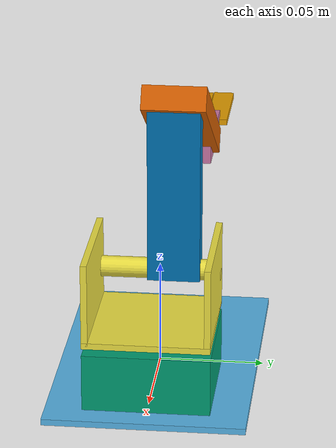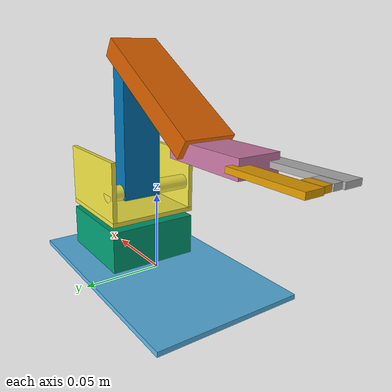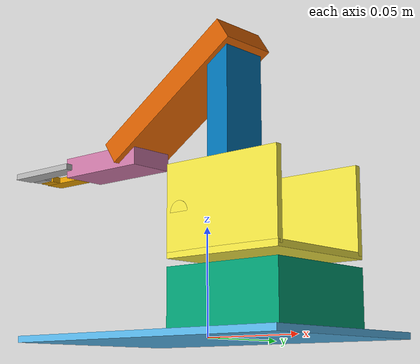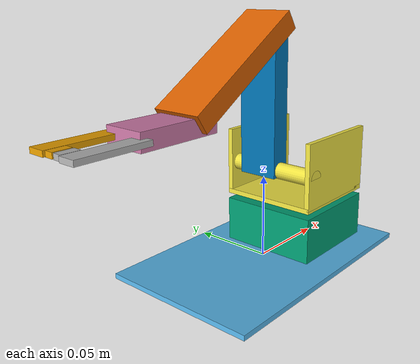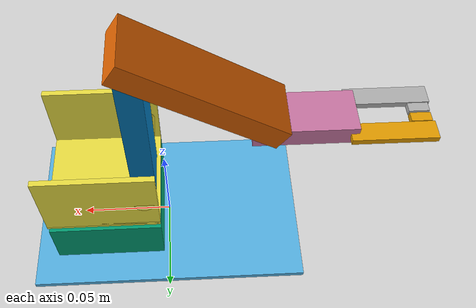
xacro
<?xml version='1.0'?>

<robot name="simple_arm"
  xmlns:xacro="http://www.ros.org/wiki/xacro">

  <!-- Used for fixing robot to Gazebo 'base_link' -->
  <link name="world"/>

  <joint name="fixed" type="fixed">
    <parent link="world"/>
    <child link="arm_footprint"/>
  </joint>

  <!-- footprint tile -->
  <link name='arm_footprint'>
    <inertial>
      <mass value="0.1"/>
      <origin xyz="0.0 0 0" rpy="0 0 0"/>
      <inertia ixx="10" ixy="0.0" ixz="0.0" iyy="10" iyz="0.0" izz="10"/>
    </inertial>

    <collision name='arm_footprint_collision'>
      <origin xyz="0 0 0" rpy="0 0 0"/>
      <geometry>
        <box size="0.15 .095 .003"/>
      </geometry>
    </collision>

    <visual name='arm_footprint_visual'>
      <origin xyz="0 0 0" rpy="0 0 0"/>
      <geometry>
        <box size="0.15 .095 .003"/>
      </geometry>
    </visual>
  </link>
  <!-- begin base block -->
  <joint name="arm_footprint_base_block_joint" type="fixed">
    <origin xyz="0.033 0 0.015"/>
    <child link="base_block" />
    <parent link="arm_footprint" />
  </joint>

  <link name='base_block'>
    <inertial>
      <mass value="0.05" />
      <inertia ixx="10" ixy="0.0" ixz="0.0" iyy="10" iyz="0.0" izz="10"/>
    </inertial>
    <visual name='base_block_visual'>
      <origin xyz="0 0 0" rpy="0 0 0"/>
      <geometry>
        <box size="0.06 0.06 0.028"/>
      </geometry>
    </visual>
    <collision name='base_block_collision'>
      <origin xyz="0 0 0" rpy="0 0 0"/>
      <geometry>
        <box size="0.06 0.06 0.028"/>
      </geometry>
    </collision>

  </link>
  <!-- end base block -->
  <!-- begin rotating block -->
  <joint name="base_block_rotating_block_joint" type="revolute">
    <limit lower="-1.54" upper="1.54" effort="10" velocity="3"/>
    <axis xyz="0 0 1"/>
    <origin xyz="0 0 0.019" rpy="0 0 0" />
    <child link="rotating_block"/>
    <parent link="base_block"/>
  </joint>
  <link name='rotating_block'>
    <inertial>
      <mass value="0.05" />
      <inertia ixx="10" ixy="0.0" ixz="0.0" iyy="10" iyz="0.0" izz="10"/>
    </inertial>

    <visual name='rotating_block_visual_right'>
      <origin xyz="0 0.0285 0.02" rpy="0 0 0"/>
      <geometry>
        <box size="0.06 0.003 0.04"/>
      </geometry>
    </visual>

    <visual name='rotating_block_visual_left'>
      <origin xyz="0 -0.0285 0.02" rpy="0 0 0"/>
      <geometry>
        <box size="0.06 0.003 0.04"/>
      </geometry>
    </visual>

    <visual name='rotating_block_visual_base'>
      <origin xyz="0 0 0" rpy="0 0 0"/>
      <geometry>
        <box size="0.06 0.06 0.003"/>
      </geometry>
    </visual>
    <collision name='rotating_block_collision_right'>
      <origin xyz="0 0.0285 0.02" rpy="0 0 0"/>
      <geometry>
        <box size="0.06 0.003 0.04"/>
      </geometry>
    </collision>

    <collision name='rotating_block_collision_left'>
      <origin xyz="0 -0.0285 0.02" rpy="0 0 0"/>
      <geometry>
        <box size="0.06 0.003 0.04"/>
      </geometry>
    </collision>

    <collision name='rotating_block_collision_base'>
      <origin xyz="0 0 0" rpy="0 0 0"/>
      <geometry>
        <box size="0.06 0.06 0.003"/>
      </geometry>
    </collision>

    <visual name='rotating_block_vertical_arm_axis'>
      <!-- no collission for this part as it's just for our visual reference -->
      <origin xyz="-0.023 0 0.01825" rpy="1.573301 0 0"/>
      <geometry>
        <cylinder length="0.06" radius="0.005"/>
      </geometry>
    </visual>

  </link>
  <!-- end rotating block -->
  <!-- begin vertical arm -->
  <joint name="rotating_block_vertical_arm_joint" type="revolute">
    <limit lower="-1.54" upper="0.6" effort="10" velocity="3"/>
    <axis xyz="0 1 0"/>
    <origin xyz="-0.023 0.008 0.01825" rpy="0 0 0"/>
    <child link="vertical_arm"/>
    <parent link="rotating_block"/>
    <dynamics friction="0.7"/>
  </joint>

  <link name='vertical_arm'>
    <inertial>
      <mass value="0.05" />
      <inertia ixx="10" ixy="0.0" ixz="0.0" iyy="10" iyz="0.0" izz="10"/>
    </inertial>
    <visual name='vertical_arm_visual'>
      <origin xyz="0 0 0.0395" rpy="0 0 0"/>
      <geometry>
        <box size="0.012 0.025 0.087"/>
      </geometry>
    </visual>
    <collision name='vertical_arm_collision'>
      <origin xyz="0 0 0.0395" rpy="0 0 0"/>
      <geometry>
        <box size="0.012 0.025 0.087"/>
      </geometry>
    </collision>

  </link>
  <!-- end vertical arm -->
  <!-- begin forearm -->
  <joint name="vertical_arm_forearm_joint" type="revolute">
    <limit lower="-.78" upper="1.7" effort="10" velocity="3"/>
    <axis xyz="0 1 0"/>
    <origin xyz="0 0.0 0.084" rpy="0 1 0"/>
    <parent link="vertical_arm"/>
    <child link="forearm"/>
    <dynamics friction="0.7"/>
  </joint>

  <link name='forearm'>
    <inertial>
      <mass value="0.05" />
      <inertia ixx="10" ixy="0.0" ixz="0.0" iyy="10" iyz="0.0" izz="10"/>
    </inertial>
    <visual name='forearm_visual'>
      <origin xyz="0 0 -0.037" rpy="0 0 0"/>
      <geometry>
        <box size="0.012 0.0305 0.088"/>
      </geometry>
    </visual>
    <collision name='forearm_collision'>
      <origin xyz="0 0 -0.037" rpy="0 0 0"/>
      <geometry>
        <box size="0.012 0.0305 0.088"/>
      </geometry>
    </collision>
  </link>
  <!-- end forearm -->
  <!-- begin actuator -->
  <joint name="actuator_forearm_joint" type="revolute">
    <limit lower="-.78" upper="1.7" effort="10" velocity="3"/>
    <axis xyz="0 1 0"/>
    <origin xyz="0 0 -0.0845" rpy="0 0.57 0"/>
    <child link="actuator_body"/>
    <parent link="forearm"/>
    <dynamics friction="0.7"/>
  </joint>

  <link name='actuator_body'>
    <inertial>
      <mass value="0.05" />
      <inertia ixx="10" ixy="0.0" ixz="0.0" iyy="10" iyz="0.0" izz="10"/>
    </inertial>
    <visual name='actuator_body_visual'>
      <origin xyz="0 0 -0.008" rpy="0 0 0"/>
      <geometry>
        <box size="0.01 0.024 0.050"/>
      </geometry>
    </visual>
    <collision name='actuator_body_collision'>
      <origin xyz="0 0 -0.008" rpy="0 0 0"/>
      <geometry>
        <box size="0.01 0.024 0.050"/>
      </geometry>
    </collision>

  </link>
  <joint name="left_gripper_actuator_body" type="revolute">
    <limit lower="-.78" upper="0" effort="10" velocity="3"/>
    <axis xyz="1 0 0"/>
    <origin xyz="0 -0.0109 -0.029 " rpy="0 0 0"/>
    <parent link="actuator_body"/>
    <child link="left_gripper"/>
  </joint>

  <link name='left_gripper'>
    <inertial>
      <mass value="0.005" />
      <inertia ixx="10" ixy="0.0" ixz="0.0" iyy="10" iyz="0.0" izz="10"/>
    </inertial>
    <visual name='left_gripper_visual'>
      <origin xyz="0 0 -0.0205" rpy="0 0 0"/>
      <geometry>
        <box size="0.003 0.01 0.041"/>
      </geometry>
    </visual>
    <visual name='left_gripper_tip_visual'>
      <origin xyz="0 .0079 -0.035" rpy="0 0 0"/>
      <geometry>
        <box size="0.003 0.005 0.01"/>
      </geometry>
    </visual>
    <collision name='left_gripper_collision'>
      <origin xyz="0 0 -0.0205" rpy="0 0 0"/>
      <geometry>
        <box size="0.003 0.01 0.041"/>
      </geometry>
    </collision>
    <collision name='left_gripper_tip_collision'>
      <origin xyz="0 .0079 -0.035" rpy="0 0 0"/>
      <geometry>
        <box size="0.003 0.005 0.01"/>
      </geometry>
    </collision>
  </link>
  <joint name="right_gripper_actuator_body" type="revolute">
    <limit lower="0" upper="0.78" effort="10" velocity="3"/>
    <axis xyz="1 0 0"/>
    <origin xyz="0 0.0109 -0.029 " rpy="0 0 0"/>
    <parent link="actuator_body"/>
    <child link="right_gripper"/>
  </joint>

  <link name='right_gripper'>
    <inertial>
      <mass value="0.005" />
      <inertia ixx="10" ixy="0.0" ixz="0.0" iyy="10" iyz="0.0" izz="10"/>
    </inertial>
    <visual name='right_gripper_side_visual'>
      <origin xyz="0 0 -0.0205" rpy="0 0 0"/>
      <geometry>
        <box size="0.003 0.01 0.041"/>
      </geometry>
    </visual>
    <visual name='right_gripper_tip_visual'>
      <origin xyz="0 -.0079 -0.035" rpy="0 0 0"/>
      <geometry>
        <box size="0.003 0.005 0.01"/>
      </geometry>
    </visual>
    <collision name='right_gripper_side_collision'>
      <origin xyz="0 0 -0.0205" rpy="0 0 0"/>
      <geometry>
        <box size="0.003 0.01 0.041"/>
      </geometry>
    </collision>
    <collision name='right_gripper_tip_collision'>
      <origin xyz="0 -.0079 -0.035" rpy="0 0 0"/>
      <geometry>
        <box size="0.003 0.005 0.01"/>
      </geometry>
    </collision>
  </link>

  <!-- end actuator-->

</robot>
